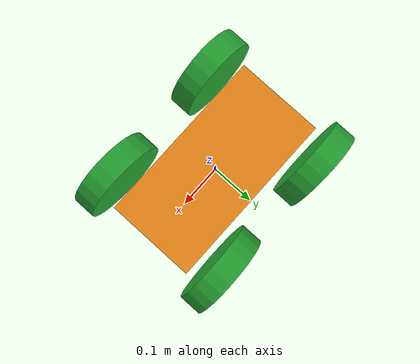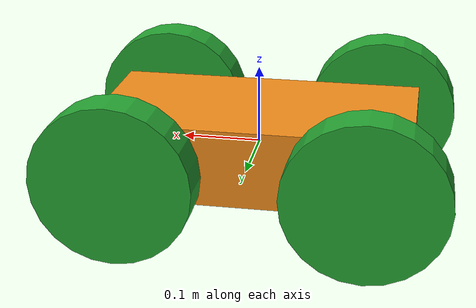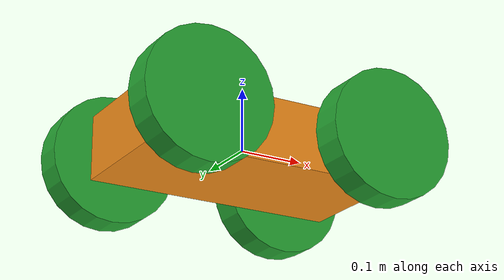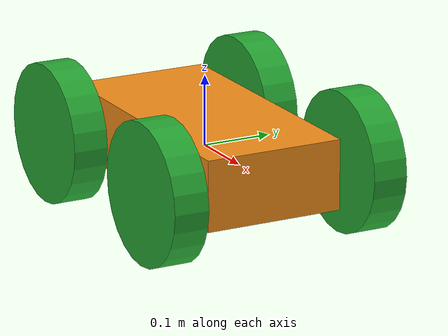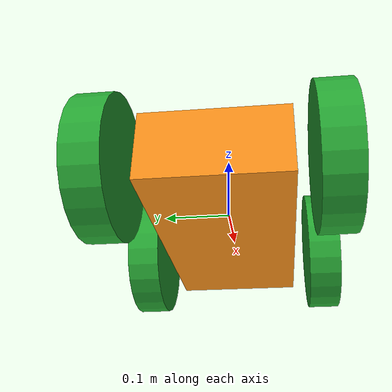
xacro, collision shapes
<?xml version='1.0'?>

<robot name="mogi_bot" xmlns:xacro="http://www.ros.org/wiki/xacro">

  <!-- STEP 3 - Gazebo plugin -->
  <xacro:include filename="$(find bme_gazebo_basics)/urdf/mogi_bot_omnidirectional.gazebo" />

  <!-- STEP 4 - RViz colors -->
  <xacro:include filename="$(find bme_gazebo_basics)/urdf/materials.xacro" />

  <!-- STEP 1 - Robot chassis -->
  <link name="base_footprint"></link>

  <joint name="base_footprint_joint" type="fixed">
    <origin xyz="0 0 0" rpy="0 0 0" />
    <parent link="base_footprint"/>
    <child link="base_link" />
  </joint>

  <link name='base_link'>
    <pose>0 0 0.1 0 0 0</pose>

    <inertial>
      <mass value="5.0"/>
      <origin xyz="0.0 0 0" rpy=" 0 0 0"/>
      <inertia
          ixx="0.1" ixy="0" ixz="0"
          iyy="0.1" iyz="0"
          izz="0.1"
      />
    </inertial>

    <collision name='collision'>
      <origin xyz="0 0 0" rpy=" 0 0 0"/>
      <geometry>
        <box size=".4 .2 .1"/>
      </geometry>
    </collision>

    <visual name='base_link_visual'>
      <origin xyz="0 0 0" rpy=" 0 0 0"/>
      <geometry>
        <!--box size=".4 .2 .1"/-->
        <mesh filename = "package://bme_gazebo_basics/meshes/mogi_bot.dae"/>
      </geometry>
      <material name="orange"/>
    </visual>

  </link>

  <!-- STEP 2 - Wheels -->
  <joint type="continuous" name="front_left_wheel_joint">
    <origin xyz="0.15 0.15 0" rpy="0 0 0"/>
    <child link="front_left_wheel"/>
    <parent link="base_link"/>
    <axis xyz="0 1 0" rpy="0 0 0"/>
    <limit effort="10000" velocity="1000"/>
    <dynamics damping="1.0" friction="1.0"/>

  </joint>

  <link name='front_left_wheel'>
    <inertial>
      <mass value="0.5"/>
      <origin xyz="0 0 0" rpy="0 1.5707 1.5707"/>
      <inertia
          ixx="0.001354166" ixy="0" ixz="0"
          iyy="0.001354166" iyz="0"
          izz="0.0025"
      />
    </inertial>

    <collision name='collision'>
      <origin xyz="0 0 0" rpy="0 1.5707 1.5707"/>
      <geometry>
        <cylinder radius=".1" length=".05"/>
      </geometry>
    </collision>

    <visual name='front_left_wheel_visual'>
      <origin xyz="0 0 0" rpy="0 1.5707 1.5707"/>
      <geometry>
        <!--cylinder radius=".1" length=".05"/-->
        <mesh filename = "package://bme_gazebo_basics/meshes/wheel.dae"/>
      </geometry>
      <material name="green"/>
    </visual>
  </link>

  <joint type="continuous" name="front_right_wheel_joint">
    <origin xyz="0.15 -0.15 0" rpy="0 0 0"/>
    <child link="front_right_wheel"/>
    <parent link="base_link"/>
    <axis xyz="0 1 0" rpy="0 0 0"/>
    <limit effort="10000" velocity="1000"/>
    <dynamics damping="1.0" friction="1.0"/>
  </joint>

  <link name='front_right_wheel'>
    <inertial>
      <mass value="0.5"/>
      <origin xyz="0 0 0" rpy="0 1.5707 1.5707"/>
      <inertia
          ixx="0.001354166" ixy="0" ixz="0"
          iyy="0.001354166" iyz="0"
          izz="0.0025"
      />
    </inertial>

    <collision name='collision'>
      <origin xyz="0 0 0" rpy="0 1.5707 1.5707"/>
      <geometry>
        <cylinder radius=".1" length=".05"/>
      </geometry>
    </collision>

    <visual name='front_right_wheel_visual'>
      <origin xyz="0 0 0" rpy="0 1.5707 1.5707"/>
      <geometry>
        <!--cylinder radius=".1" length=".05"/-->
        <mesh filename = "package://bme_gazebo_basics/meshes/wheel.dae"/>
      </geometry>
      <material name="green"/>
    </visual>
  </link>

  <joint type="continuous" name="rear_left_wheel_joint">
    <origin xyz="-0.15 0.15 0" rpy="0 0 0"/>
    <child link="rear_left_wheel"/>
    <parent link="base_link"/>
    <axis xyz="0 1 0" rpy="0 0 0"/>
    <limit effort="10000" velocity="1000"/>
    <dynamics damping="1.0" friction="1.0"/>
  </joint>

  <link name='rear_left_wheel'>
    <inertial>
      <mass value="0.5"/>
      <origin xyz="0 0 0" rpy="0 1.5707 1.5707"/>
      <inertia
          ixx="0.001354166" ixy="0" ixz="0"
          iyy="0.001354166" iyz="0"
          izz="0.0025"
      />
    </inertial>

    <collision name='collision'>
      <origin xyz="0 0 0" rpy="0 1.5707 1.5707"/>
      <geometry>
        <cylinder radius=".1" length=".05"/>
      </geometry>
    </collision>

    <visual name='rear_left_wheel_visual'>
      <origin xyz="0 0 0" rpy="0 1.5707 1.5707"/>
      <geometry>
        <!--cylinder radius=".1" length=".05"/-->
        <mesh filename = "package://bme_gazebo_basics/meshes/wheel.dae"/>
      </geometry>
      <material name="green"/>
    </visual>
  </link>

  <joint type="continuous" name="rear_right_wheel_joint">
    <origin xyz="-0.15 -0.15 0" rpy="0 0 0"/>
    <child link="rear_right_wheel"/>
    <parent link="base_link"/>
    <axis xyz="0 1 0" rpy="0 0 0"/>
    <limit effort="10000" velocity="1000"/>
    <dynamics damping="1.0" friction="1.0"/>
  </joint>

  <link name='rear_right_wheel'>
    <inertial>
      <mass value="0.5"/>
      <origin xyz="0 0 0" rpy="0 1.5707 1.5707"/>
      <inertia
          ixx="0.001354166" ixy="0" ixz="0"
          iyy="0.001354166" iyz="0"
          izz="0.0025"
      />
    </inertial>

    <collision name='collision'>
      <origin xyz="0 0 0" rpy="0 1.5707 1.5707"/>
      <geometry>
        <cylinder radius=".1" length=".05"/>
      </geometry>
    </collision>

    <visual name='rear_right_wheel_visual'>
      <origin xyz="0 0 0" rpy="0 1.5707 1.5707"/>
      <geometry>
        <!--cylinder radius=".1" length=".05"/-->
        <mesh filename = "package://bme_gazebo_basics/meshes/wheel.dae"/>
      </geometry>
      <material name="green"/>
    </visual>
  </link>

  <!-- STEP 4 - Gazebo physics -->
  <gazebo reference="front_left_wheel">
    <!-- kp and kd for rubber -->
    <kp>1000000.0</kp>
    <kd>100.0</kd>
    <mu1>1.5</mu1>
    <mu2>1.5</mu2>
    <fdir1>1 0 0</fdir1>
    <maxVel>1.0</maxVel>
    <minDepth>0.00</minDepth>
  </gazebo>

  <gazebo reference="front_right_wheel">
    <!-- kp and kd for rubber -->
    <kp>1000000.0</kp>
    <kd>100.0</kd>
    <mu1>1.5</mu1>
    <mu2>1.5</mu2>
    <fdir1>1 0 0</fdir1>
    <maxVel>1.0</maxVel>
    <minDepth>0.00</minDepth>
  </gazebo>

  <gazebo reference="rear_left_wheel">
    <!-- kp and kd for rubber -->
    <kp>1000000.0</kp>
    <kd>100.0</kd>
    <mu1>1.5</mu1>
    <mu2>1.5</mu2>
    <fdir1>1 0 0</fdir1>
    <maxVel>1.0</maxVel>
    <minDepth>0.00</minDepth>
  </gazebo>

  <gazebo reference="rear_right_wheel">
    <!-- kp and kd for rubber -->
    <kp>1000000.0</kp>
    <kd>100.0</kd>
    <mu1>1.5</mu1>
    <mu2>1.5</mu2>
    <fdir1>1 0 0</fdir1>
    <maxVel>1.0</maxVel>
    <minDepth>0.00</minDepth>
  </gazebo>

</robot>
